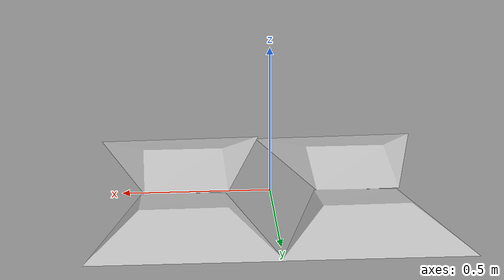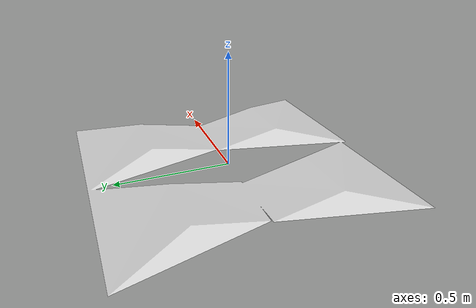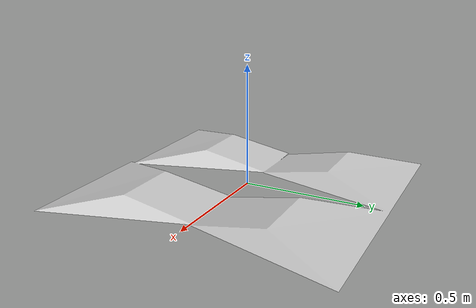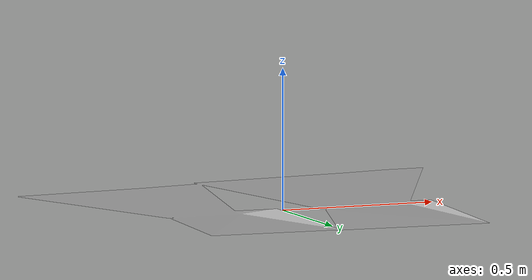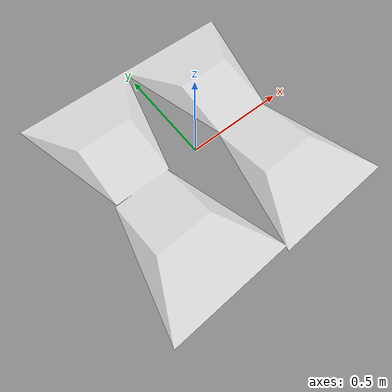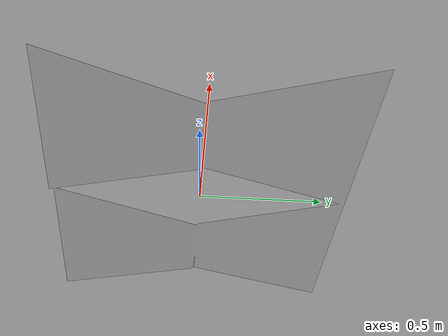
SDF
<?xml version="1.0" ?>
<sdf version="1.5">
  <model name="rampa">
    <static>true</static>

    <link name="link">
      <collision name="collision">
        <geometry>
          <mesh>
            <uri>model://rampa/mesh/rampa.dae</uri>
          </mesh>
        </geometry>
      </collision>
      <visual name="visual">
        <geometry>
          <mesh>
            <uri>model://rampa/mesh/rampa.dae</uri>
          </mesh>
        </geometry>
        <material>
          <script>
            <uri>model://rampa/materials/scripts</uri>
            <uri>model://rampa/materials/textures</uri>
            <name>rampa/rampa</name>
          </script>
        </material>
      </visual>
    </link>

  </model>
</sdf>
